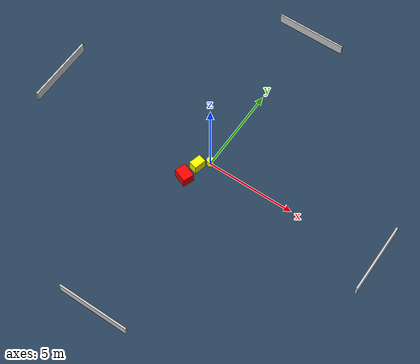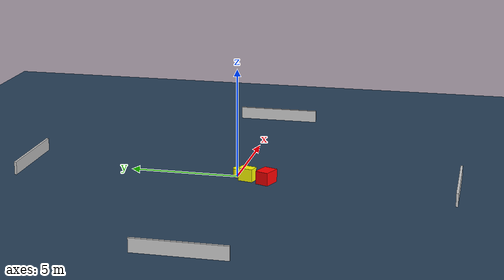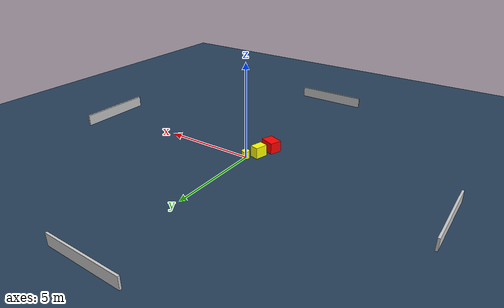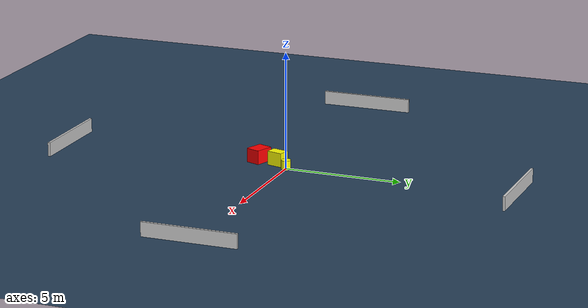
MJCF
<?xml version="1.0" ?>
<mujoco model="generated_environment">
  <option timestep="0.01" integrator="RK4" cone="elliptic"/>
  <default>
    <geom density="1"/>
  </default>
  <asset>
    <texture builtin="gradient" height="3072" name="skybox" rgb1="0.3 0.5 0.7" rgb2="0 0 0" type="skybox" width="512"/>
    <texture builtin="checker" height="300" name="groundplane" rgb1="0.2 0.3 0.4" rgb2="0.1 0.2 0.3" type="2d" width="300"/>
    <material name="groundplane" reflectance="0.2" texrepeat="5 5" texture="groundplane"/>
  </asset>
  <worldbody>
    <light dir="0 0 -1" directional="true" pos="0 0 1.5"/>
    <geom condim="3" friction="0.5 0.005 0.001" material="groundplane" name="floor" pos="0 0 0" size="0 0 0.05" type="plane"/>
    <body name="walls">
      <geom name="wall_1" condim="4" pos="-10.0 0.0 0.3" rgba="0.800000011920929 0.800000011920929 0.800000011920929 1.0" size="0.05 2.0 0.3" type="box"/>
      <geom name="wall_2" condim="4" pos="10.0 0.0 0.3" rgba="0.800000011920929 0.800000011920929 0.800000011920929 1.0" size="0.05 2.0 0.3" type="box"/>
      <geom name="wall_3" condim="4" pos="0.0 -10.0 0.3" rgba="0.800000011920929 0.800000011920929 0.800000011920929 1.0" size="2.0 0.05 0.3" type="box"/>
      <geom name="wall_4" condim="4" pos="0.0 10.0 0.3" rgba="0.800000011920929 0.800000011920929 0.800000011920929 1.0" size="2.0 0.05 0.3" type="box"/>
    </body>
    <body name="robot">
      <joint name="joint_x" type="slide" pos="0 0 0" axis="1 0 0"/>
      <joint name="joint_y" type="slide" pos="0 0 0" axis="0 1 0"/>
      <geom name="robot" type="cylinder" pos="0.0 0.0 0.2" size="0.2 0.2 0.0" mass="5.0" friction="1.0 0.005 0.0001" condim="4" rgba="1.0 1.0 0.0 1.0"/>
    </body>
    <body name="obstacle_1_movable">
      <geom name="obstacle_1_movable" condim="4" pos="-0.43457124863065655 -0.5572868576060535 0.3" euler="0 0 164.957414977015" friction="0.0 0.005 0.001" rgba="1.0 1.0 0.0 1.0" size="0.23338948867313422 0.34286223926392767 0.3" type="box" mass="0.1"/>
      <joint type="free"/>
    </body>
    <body name="obstacle_2_static">
      <geom name="obstacle_2_static" condim="4" pos="-0.6202744631815572 -1.4696995897219414 0.3" euler="0 0 248.8706639709347" friction="0.0 0.005 0.001" rgba="1.0 0.0 0.0 1.0" size="0.3161159602137139 0.4004642702153342 0.3" type="box"/>
    </body>
  </worldbody>
  <actuator>
    <motor name="actuator_x" joint="joint_x" gear="1" ctrlrange="-1 1"/>
    <motor name="actuator_y" joint="joint_y" gear="1" ctrlrange="-1 1"/>
  </actuator>
</mujoco>
